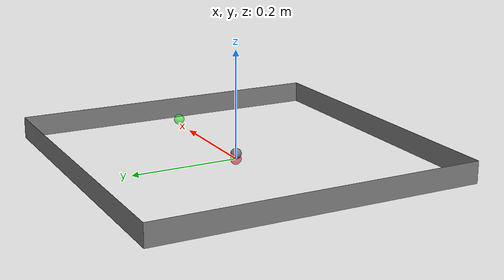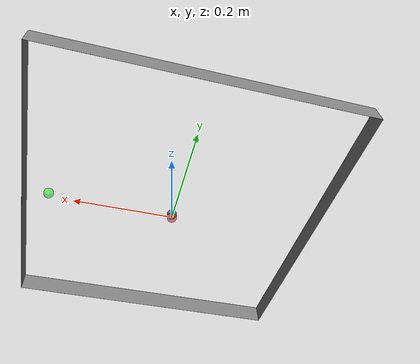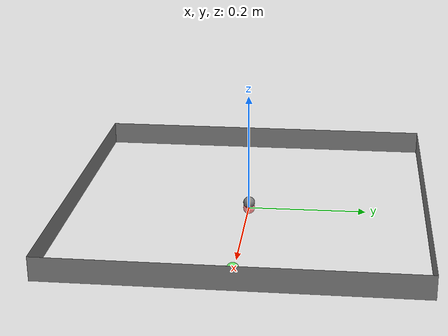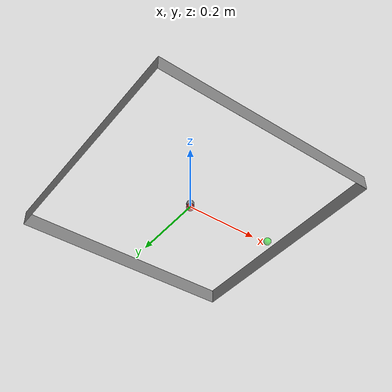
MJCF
<mujoco model="particle">
  <!-- Adopted from the MJPC particle task:
    https://github.com/google-deepmind/mujoco_mpc/tree/main/mjpc/tasks/particle
  -->
  <option timestep="0.01" iterations="1" ls_iterations="4">
    <flag contact="disable" eulerdamp="disable"/>
  </option>

  <default>
    <joint type="hinge" axis="0 0 1" limited="true" range="-.29 .29" damping="1" />
    <motor gear=".1" ctrlrange="-1 1" ctrllimited="true" />
    <default class="translation">
      <position kp="5" kv="3" ctrlrange="-0.3 0.3"/>
    </default>
  </default>

  <worldbody>
    <site name="reference" pos="0 0 0" size="0.01" rgba="1 0 0 0.5"/>

    <body name="goal" mocap="true" pos="0.25 0 0.01" quat="1 0 0 0">
      <geom type="sphere" size=".01" contype="0" conaffinity="0" rgba="0 1 0 .5" />
    </body>

    <geom name="wall_x" type="plane" pos="-.3 0 .02" zaxis="1 0 0" size=".02 .3 .02" />
    <geom name="wall_y" type="plane" pos="0 -.3 .02" zaxis="0 1 0" size=".3 .02 .02" />
    <geom name="wall_neg_x" type="plane" pos=".3 0 .02" zaxis="-1 0 0" size=".02 .3 .02" />
    <geom name="wall_neg_y" type="plane" pos="0 .3 .02" zaxis="0 -1 0" size=".3 .02 .02" />

    <body name="pointmass" pos="0 0 .01">
      <camera name="cam0" pos="0 -0.3 0.3" xyaxes="1 0 0 0 0.7 0.7" />
      <joint name="root_x" type="slide" pos="0 0 0" axis="1 0 0" />
      <joint name="root_y" type="slide" pos="0 0 0" axis="0 1 0" />
      <geom name="pointmass" type="sphere" size=".01" mass=".3" />
      <site name="particle" pos="0 0 0" size="0.01" />
    </body>
  </worldbody>

  <actuator>
    <position name="x" site="particle" refsite="reference" gear="1 0 0 0 0 0" class="translation"/>
    <position name="y" site="particle" refsite="reference" gear="0 1 0 0 0 0" class="translation"/>
  </actuator>
</mujoco>
